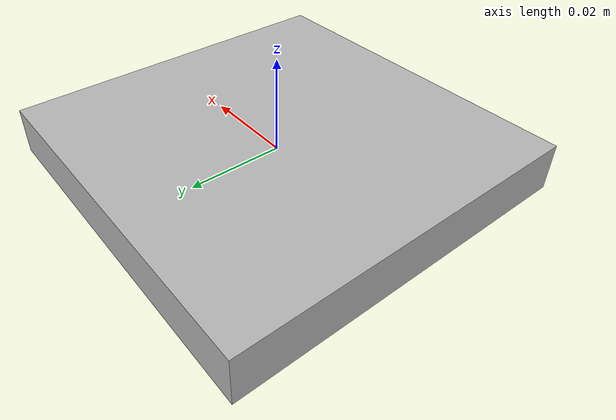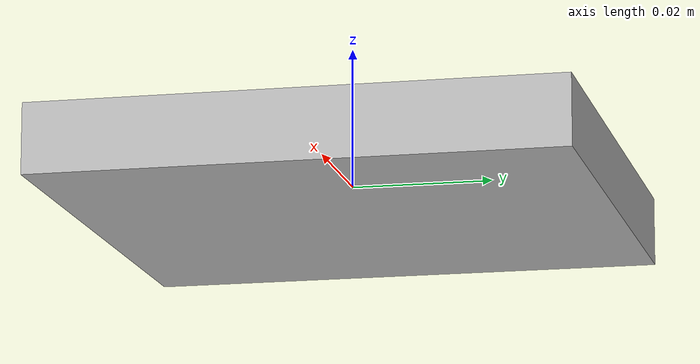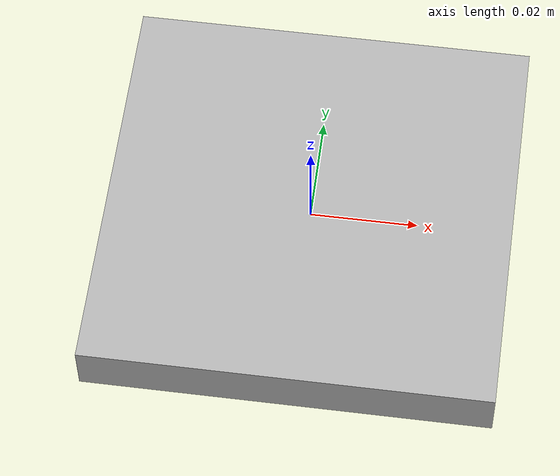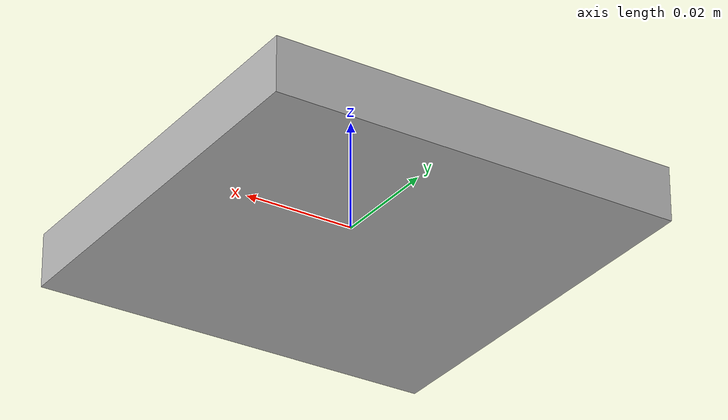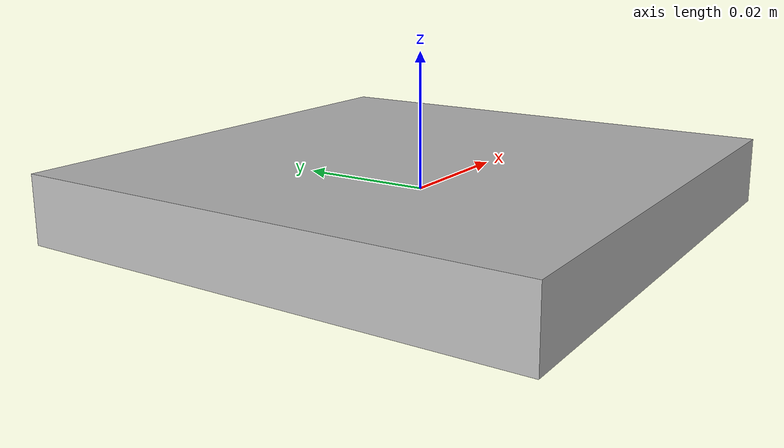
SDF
<?xml version='1.0'?>
<sdf version='1.6'>
  <model name='Apriltag36_11_00013'>
    <link name='main'>
    <pose frame=''>0 0 0 0 0 0</pose>
      <visual name='main_Visual'>
        <geometry>
          <box>
          <size>0.075 0.075 0.01</size>
          </box>
        </geometry>
           <material>
          <script>
            <uri>model://Apriltag36_11_00013/materials/scripts</uri>
            <uri>model://Apriltag36_11_00013/materials/textures</uri>
            <name>Apriltag36_11_00013</name>
          </script>
        </material>
      </visual>
     </link>
    <static>1</static>
  </model>
</sdf>
